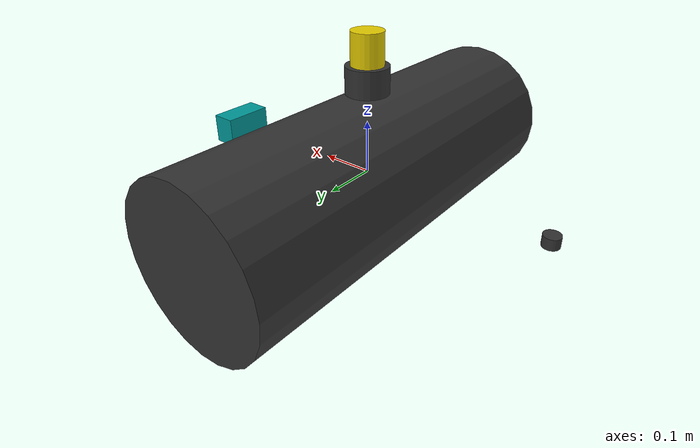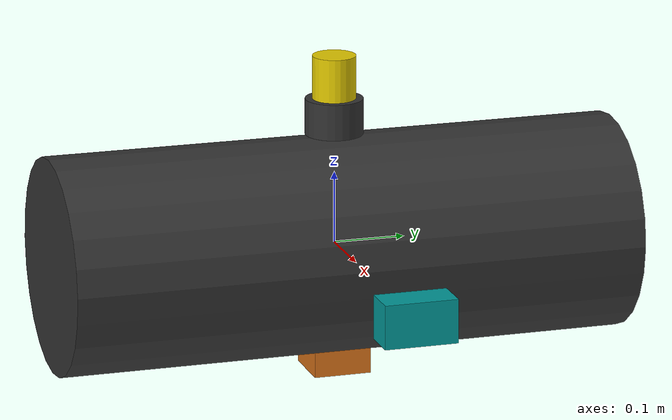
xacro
<?xml version="1.0"?>
<robot name="mps_vehicle" xmlns:xacro="http://www.ros.org/wiki/xacro">

  <xacro:arg name="fls_horizontal_fov_deg" default="120.0"/>
  <xacro:arg name="fls_max_range"          default="10.0"/>
  <xacro:arg name="fls_update_rate"        default="15.0"/>
  <xacro:property name="fls_fov_deg_str" value="$(arg fls_horizontal_fov_deg)"/>
  <xacro:property name="fls_max_range_str" value="$(arg fls_max_range)"/>
  <xacro:property name="fls_update_rate_str" value="$(arg fls_update_rate)"/>
  <xacro:property name="fls_hfov_rad" value="${float(fls_fov_deg_str) * pi / 180.0}"/>

  <!-- ── Materials ─────────────────────────────────────────────── -->
  <material name="dark_grey">
    <color rgba="0.2 0.2 0.2 1.0"/>
  </material>
  <material name="yellow">
    <color rgba="0.9 0.8 0.0 1.0"/>
  </material>
  <material name="teal">
    <color rgba="0.0 0.6 0.6 1.0"/>
  </material>
  <material name="orange">
    <color rgba="0.85 0.45 0.1 1.0"/>
  </material>

  <!-- ── Base link (vehicle body) ──────────────────────────────── -->
  <link name="base_link">
    <visual>
      <geometry>
        <cylinder radius="0.15" length="0.8"/>
      </geometry>
      <origin xyz="0 0 0" rpy="1.5708 0 0"/>
      <material name="dark_grey"/>
    </visual>
    <collision>
      <geometry>
        <cylinder radius="0.15" length="0.8"/>
      </geometry>
      <origin xyz="0 0 0" rpy="1.5708 0 0"/>
    </collision>
    <inertial>
      <mass value="20.0"/>
      <origin xyz="0 0 0"/>
      <inertia ixx="0.5" ixy="0.0" ixz="0.0"
               iyy="0.5" iyz="0.0" izz="0.2"/>
    </inertial>
  </link>

  <!-- ── MPS mount (fixed to vehicle top) ─────────────────────── -->
  <link name="mps_mount_link">
    <visual>
      <geometry>
        <cylinder radius="0.04" length="0.05"/>
      </geometry>
      <origin xyz="0 0 0" rpy="0 0 0"/>
      <material name="dark_grey"/>
    </visual>
    <collision>
      <geometry>
        <cylinder radius="0.04" length="0.05"/>
      </geometry>
    </collision>
    <inertial>
      <mass value="0.2"/>
      <inertia ixx="0.001" ixy="0" ixz="0"
               iyy="0.001" iyz="0" izz="0.001"/>
    </inertial>
  </link>

  <joint name="mps_mount_joint" type="fixed">
    <parent link="base_link"/>
    <child link="mps_mount_link"/>
    <!-- Sit on top of the vehicle body -->
    <origin xyz="0 0 0.18" rpy="0 0 0"/>
  </joint>

  <!-- ── MPS rotating head ─────────────────────────────────────── -->
  <link name="mps_head_link">
    <visual>
      <geometry>
        <cylinder radius="0.03" length="0.06"/>
      </geometry>
      <origin xyz="0 0 0.03" rpy="0 0 0"/>
      <material name="yellow"/>
    </visual>
    <collision>
      <geometry>
        <cylinder radius="0.03" length="0.06"/>
      </geometry>
      <origin xyz="0 0 0.03"/>
    </collision>
    <inertial>
      <mass value="0.1"/>
      <inertia ixx="0.0001" ixy="0" ixz="0"
               iyy="0.0001" iyz="0" izz="0.0001"/>
    </inertial>
  </link>

  <!-- This is the joint the driver node commands each step -->
  <joint name="mps_rotate_joint" type="continuous">
    <parent link="mps_mount_link"/>
    <child link="mps_head_link"/>
    <origin xyz="0 0 0.025" rpy="0 0 0"/>
    <!-- Rotation around Z = horizontal bearing sweep -->
    <axis xyz="0 0 1"/>
    <dynamics damping="0.01" friction="0.0"/>
  </joint>

  <gazebo>
    <plugin name="joint_pose_trajectory" filename="libgazebo_ros_joint_pose_trajectory.so">
      <ros>
        <namespace>/</namespace>
      </ros>
      <update_rate>100</update_rate>
    </plugin>
  </gazebo>

  <!-- ── Ray sensor on the rotating head ──────────────────────── -->
  <gazebo reference="mps_head_link">
    <sensor type="ray" name="mps_ray_sensor">
      <pose>0 0 0.06 0 0 0</pose>
      <visualize>true</visualize>
      <update_rate>100</update_rate>  <!-- high rate; driver controls actual step rate -->
      <ray>
        <scan>
          <horizontal>
            <samples>1</samples>
            <resolution>1</resolution>
            <min_angle>-0.008727</min_angle>  <!-- ±0.5 deg beam width -->
            <max_angle>0.008727</max_angle>
          </horizontal>
          <vertical>
            <samples>1</samples>
            <resolution>1</resolution>
            <min_angle>-0.008727</min_angle>
            <max_angle>0.008727</max_angle>
          </vertical>
        </scan>
        <range>
          <min>0.3</min>
          <max>30.0</max>       <!-- project spec: 30m MPS range -->
          <resolution>0.005</resolution>  <!-- 5mm range resolution -->
        </range>
        <!-- Gazebo base noise; driver adds range-dependent noise on top -->
        <noise>
          <type>gaussian</type>
          <mean>0.0</mean>
          <stddev>0.005</stddev>
        </noise>
      </ray>
      <plugin name="mps_ray_plugin" filename="libgazebo_ros_ray_sensor.so">
        <ros>
          <namespace>/mps</namespace>
          <remapping>~/out:=raw_range</remapping>
        </ros>
        <output_type>sensor_msgs/Range</output_type>
        <frame_name>mps_head_link</frame_name>
      </plugin>
    </sensor>
  </gazebo>

  <link name="fls_link">
    <visual>
      <geometry>
        <box size="0.05 0.10 0.06"/>
      </geometry>
      <material name="teal"/>
    </visual>
    <collision>
      <geometry>
        <box size="0.05 0.10 0.06"/>
      </geometry>
    </collision>
    <inertial>
      <mass value="0.3"/>
      <inertia ixx="0.0005" ixy="0" ixz="0" iyy="0.0005" iyz="0" izz="0.0005"/>
    </inertial>
  </link>

  <joint name="fls_mount_joint" type="fixed">
    <parent link="base_link"/>
    <!-- Front of the hull, facing +X (forward) -->
    <origin xyz="0.36 0 0.0" rpy="0 0 0"/>
    <child link="fls_link"/>
  </joint>

  <gazebo reference="fls_link">
    <sensor name="fls_sensor" type="depth">
      <visualize>true</visualize>
      <always_on>true</always_on>
      <update_rate>${fls_update_rate_str}</update_rate>
      <camera>
        <horizontal_fov>${fls_hfov_rad}</horizontal_fov>
        <image>
          <width>256</width>
          <height>64</height>
          <format>R8G8B8</format>
        </image>
        <clip>
          <near>0.1</near>
          <far>${float(fls_max_range_str) + 2.0}</far>
        </clip>
        <depth_camera>
          <output>fls_depths</output>
        </depth_camera>
      </camera>

      <plugin filename="libnps_multibeam_sonar_ros_plugin.so" name="fls_sensor_controller">
        <!-- Sonar physical properties (Blueview-P900-like defaults;
             tune freely, none of these are project-specified) -->
        <verticalFOV>20</verticalFOV>
        <sonarFreq>900e3</sonarFreq>
        <bandwidth>29.9e3</bandwidth>
        <soundSpeed>1500</soundSpeed>
        <sourceLevel>220</sourceLevel>
        <maxDistance>${fls_max_range_str}</maxDistance>
        <constantReflectivity>true</constantReflectivity>
        <reflectivityDatabaseFile>variationalReflectivityDatabase.csv</reflectivityDatabaseFile>
        <raySkips>10</raySkips>
        <sensorGain>0.02</sensorGain>
        <plotScaler>0</plotScaler>
        <writeLog>false</writeLog>
        <debugFlag>false</debugFlag>
        <writeFrameInterval>5</writeFrameInterval>
        <artificialVehicleVibration>false</artificialVehicleVibration>
        <cameraName>fls</cameraName>
        <imageTopicName>fls/rgb/image_raw</imageTopicName>
        <cameraInfoTopicName>fls/rgb/camera_info</cameraInfoTopicName>
        <pointCloudTopicName>fls/points</pointCloudTopicName>
        <depthImageTopicName>fls/depth/image_raw</depthImageTopicName>
        <depthImageCameraInfoTopicName>fls/depth/camera_info</depthImageCameraInfoTopicName>
        <!-- Primary output the project spec asks for: -->
        <sonarImageTopicName>/fls/image</sonarImageTopicName>
        <!-- Raw polar data (acoustic_msgs/SonarImage), available if you
             later want full-precision range/azimuth/intensity arrays
             instead of the rendered BGR8 image: -->
        <sonarImageRawTopicName>/fls/sonar_image_raw</sonarImageRawTopicName>
        <frameName>fls_link</frameName>
      </plugin>
    </sensor>
  </gazebo>

  <link name="imu_link">
    <visual>
      <geometry><box size="0.03 0.03 0.02"/></geometry>
      <material name="dark_grey"/>
    </visual>
    <inertial>
      <mass value="0.05"/>
      <inertia ixx="0.00001" ixy="0" ixz="0" iyy="0.00001" iyz="0" izz="0.00001"/>
    </inertial>
  </link>

  <joint name="imu_joint" type="fixed">
    <parent link="base_link"/>
    <child link="imu_link"/>
    <origin xyz="0 0 0.05" rpy="0 0 0"/>
  </joint>

  <gazebo reference="imu_link">
    <sensor name="imu_sensor" type="imu">
      <always_on>true</always_on>
      <update_rate>100</update_rate>
      <imu>
        <angular_velocity>
          <x><noise type="gaussian"><mean>0.0</mean><stddev>0.0003</stddev></noise></x>
          <y><noise type="gaussian"><mean>0.0</mean><stddev>0.0003</stddev></noise></y>
          <z><noise type="gaussian"><mean>0.0</mean><stddev>0.0003</stddev></noise></z>
        </angular_velocity>
        <linear_acceleration>
          <x><noise type="gaussian"><mean>0.0</mean><stddev>0.017</stddev></noise></x>
          <y><noise type="gaussian"><mean>0.0</mean><stddev>0.017</stddev></noise></y>
          <z><noise type="gaussian"><mean>0.0</mean><stddev>0.017</stddev></noise></z>
        </linear_acceleration>
      </imu>
      <plugin name="imu_plugin" filename="libgazebo_ros_imu_sensor.so">
        <ros>
          <namespace>/imu</namespace>
          <remapping>~/out:=data</remapping>
        </ros>
        <initial_orientation_as_reference>false</initial_orientation_as_reference>
        <frame_name>imu_link</frame_name>
      </plugin>
    </sensor>
  </gazebo>

  <link name="dvl_link">
    <visual>
      <geometry><box size="0.08 0.08 0.04"/></geometry>
      <material name="orange"/>
    </visual>
    <inertial>
      <mass value="0.2"/>
      <inertia ixx="0.0002" ixy="0" ixz="0" iyy="0.0002" iyz="0" izz="0.0002"/>
    </inertial>
  </link>

  <joint name="dvl_joint" type="fixed">
    <parent link="base_link"/>
    <!-- Underside of the hull, facing down (-Z) -->
    <origin xyz="0 0 -0.16" rpy="0 3.14159265 0"/>
    <child link="dvl_link"/>
  </joint>

  <link name="pressure_link">
    <visual>
      <geometry><cylinder radius="0.015" length="0.02"/></geometry>
      <material name="dark_grey"/>
    </visual>
    <inertial>
      <mass value="0.02"/>
      <inertia ixx="0.000005" ixy="0" ixz="0" iyy="0.000005" iyz="0" izz="0.000005"/>
    </inertial>
  </link>

  <joint name="pressure_joint" type="fixed">
    <parent link="base_link"/>
    <origin xyz="-0.36 0 0" rpy="0 0 0"/>
    <child link="pressure_link"/>
  </joint>

  <!-- ── Gazebo material overrides ─────────────────────────────── -->
  <gazebo reference="base_link">
    <material>Gazebo/DarkGrey</material>
  </gazebo>
  <gazebo reference="mps_head_link">
    <material>Gazebo/Yellow</material>
  </gazebo>
  <gazebo reference="fls_link">
    <material>Gazebo/Turquoise</material>
  </gazebo>
  <gazebo reference="dvl_link">
    <material>Gazebo/Orange</material>
  </gazebo>

</robot>
